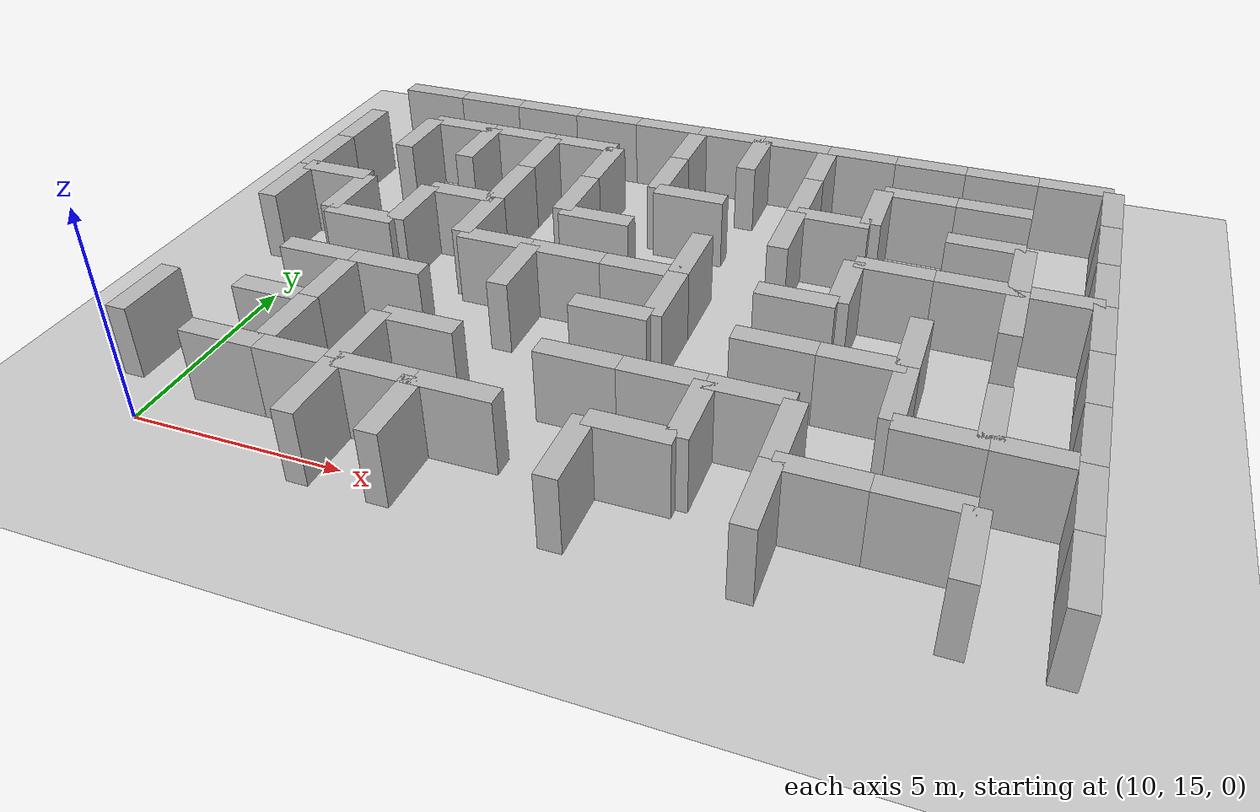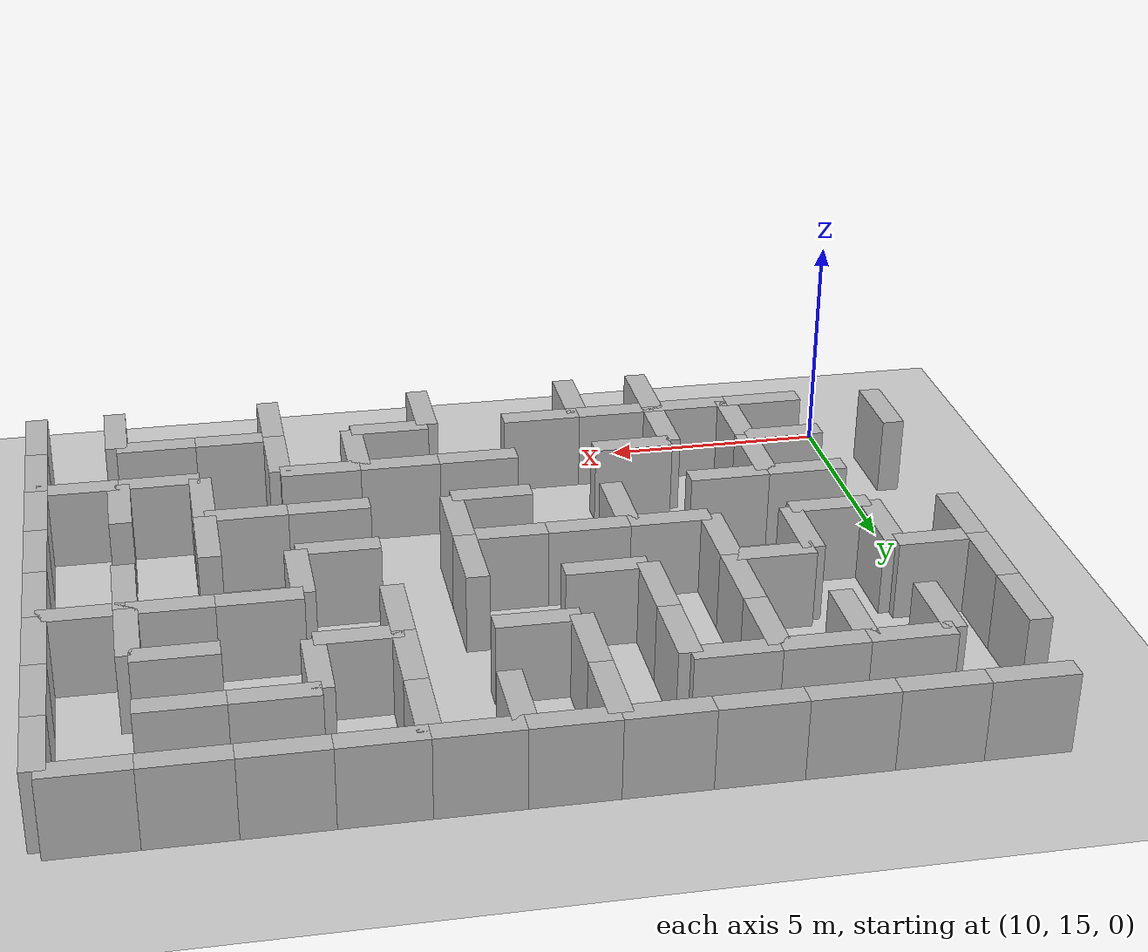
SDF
<sdf version="1.6">
 <world name="default">
  <model name="ground_plane">
   <static>1</static>
   <link name="link">
    <collision name="collision">
     <geometry><plane><normal>0 0 1</normal><size>100 100</size></plane></geometry>
     <surface><friction><ode><mu>100</mu><mu2>50</mu2></ode></friction></surface>
    </collision>
    <visual name="visual">
     <cast_shadows>0</cast_shadows>
     <geometry><plane><normal>0 0 1</normal><size>100 100</size></plane></geometry>
     <material>
      <script><uri>file://media/materials/scripts/gazebo.material</uri><name>Gazebo/Grey</name></script>
     </material>
    </visual>
   </link>
  </model>
  <model name="labyrinth_wall280">
   <pose>14.400000 15.300000 0.9 0 0 1.570796</pose>
   <link name="link">
    <inertial><mass>3.0</mass></inertial>
    <collision name="collision"><geometry><box><size>1.8 0.5 1.8</size></box></geometry></collision>
    <visual name="visual"><geometry><box><size>1.8 0.5 1.8</size></box></geometry></visual>
   </link>
   <static>true</static>
  </model>
  <model name="labyrinth_wall282">
   <pose>16.200001 15.300000 0.9 0 0 1.570796</pose>
   <link name="link">
    <inertial><mass>3.0</mass></inertial>
    <collision name="collision"><geometry><box><size>1.8 0.5 1.8</size></box></geometry></collision>
    <visual name="visual"><geometry><box><size>1.8 0.5 1.8</size></box></geometry></visual>
   </link>
   <static>true</static>
  </model>
  <model name="labyrinth_wall286">
   <pose>19.799999 15.300000 0.9 0 0 1.570796</pose>
   <link name="link">
    <inertial><mass>3.0</mass></inertial>
    <collision name="collision"><geometry><box><size>1.8 0.5 1.8</size></box></geometry></collision>
    <visual name="visual"><geometry><box><size>1.8 0.5 1.8</size></box></geometry></visual>
   </link>
   <static>true</static>
  </model>
  <model name="labyrinth_wall290">
   <pose>23.400000 15.300000 0.9 0 0 1.570796</pose>
   <link name="link">
    <inertial><mass>3.0</mass></inertial>
    <collision name="collision"><geometry><box><size>1.8 0.5 1.8</size></box></geometry></collision>
    <visual name="visual"><geometry><box><size>1.8 0.5 1.8</size></box></geometry></visual>
   </link>
   <static>true</static>
  </model>
  <model name="labyrinth_wall294">
   <pose>27.000000 15.300000 0.9 0 0 1.570796</pose>
   <link name="link">
    <inertial><mass>3.0</mass></inertial>
    <collision name="collision"><geometry><box><size>1.8 0.5 1.8</size></box></geometry></collision>
    <visual name="visual"><geometry><box><size>1.8 0.5 1.8</size></box></geometry></visual>
   </link>
   <static>true</static>
  </model>
  <model name="labyrinth_wall296">
   <pose>28.799999 15.300000 0.9 0 0 1.570796</pose>
   <link name="link">
    <inertial><mass>3.0</mass></inertial>
    <collision name="collision"><geometry><box><size>1.8 0.5 1.8</size></box></geometry></collision>
    <visual name="visual"><geometry><box><size>1.8 0.5 1.8</size></box></geometry></visual>
   </link>
   <static>true</static>
  </model>
  <model name="labyrinth_wall307">
   <pose>9.000000 17.100000 0.9 0 0 1.570796</pose>
   <link name="link">
    <inertial><mass>3.0</mass></inertial>
    <collision name="collision"><geometry><box><size>1.8 0.5 1.8</size></box></geometry></collision>
    <visual name="visual"><geometry><box><size>1.8 0.5 1.8</size></box></geometry></visual>
   </link>
   <static>true</static>
  </model>
  <model name="labyrinth_wall310">
   <pose>11.700000 16.200001 0.9 0 0 0.000000</pose>
   <link name="link">
    <inertial><mass>3.0</mass></inertial>
    <collision name="collision"><geometry><box><size>1.8 0.5 1.8</size></box></geometry></collision>
    <visual name="visual"><geometry><box><size>1.8 0.5 1.8</size></box></geometry></visual>
   </link>
   <static>true</static>
  </model>
  <model name="labyrinth_wall311">
   <pose>12.600000 17.100000 0.9 0 0 1.570796</pose>
   <link name="link">
    <inertial><mass>3.0</mass></inertial>
    <collision name="collision"><geometry><box><size>1.8 0.5 1.8</size></box></geometry></collision>
    <visual name="visual"><geometry><box><size>1.8 0.5 1.8</size></box></geometry></visual>
   </link>
   <static>true</static>
  </model>
  <model name="labyrinth_wall312">
   <pose>13.500000 16.200001 0.9 0 0 0.000000</pose>
   <link name="link">
    <inertial><mass>3.0</mass></inertial>
    <collision name="collision"><geometry><box><size>1.8 0.5 1.8</size></box></geometry></collision>
    <visual name="visual"><geometry><box><size>1.8 0.5 1.8</size></box></geometry></visual>
   </link>
   <static>true</static>
  </model>
  <model name="labyrinth_wall313">
   <pose>14.400000 17.100000 0.9 0 0 1.570796</pose>
   <link name="link">
    <inertial><mass>3.0</mass></inertial>
    <collision name="collision"><geometry><box><size>1.8 0.5 1.8</size></box></geometry></collision>
    <visual name="visual"><geometry><box><size>1.8 0.5 1.8</size></box></geometry></visual>
   </link>
   <static>true</static>
  </model>
  <model name="labyrinth_wall314">
   <pose>15.300000 16.200001 0.9 0 0 0.000000</pose>
   <link name="link">
    <inertial><mass>3.0</mass></inertial>
    <collision name="collision"><geometry><box><size>1.8 0.5 1.8</size></box></geometry></collision>
    <visual name="visual"><geometry><box><size>1.8 0.5 1.8</size></box></geometry></visual>
   </link>
   <static>true</static>
  </model>
  <model name="labyrinth_wall316">
   <pose>17.100000 16.200001 0.9 0 0 0.000000</pose>
   <link name="link">
    <inertial><mass>3.0</mass></inertial>
    <collision name="collision"><geometry><box><size>1.8 0.5 1.8</size></box></geometry></collision>
    <visual name="visual"><geometry><box><size>1.8 0.5 1.8</size></box></geometry></visual>
   </link>
   <static>true</static>
  </model>
  <model name="labyrinth_wall320">
   <pose>20.700001 16.200001 0.9 0 0 0.000000</pose>
   <link name="link">
    <inertial><mass>3.0</mass></inertial>
    <collision name="collision"><geometry><box><size>1.8 0.5 1.8</size></box></geometry></collision>
    <visual name="visual"><geometry><box><size>1.8 0.5 1.8</size></box></geometry></visual>
   </link>
   <static>true</static>
  </model>
  <model name="labyrinth_wall321">
   <pose>21.600000 17.100000 0.9 0 0 1.570796</pose>
   <link name="link">
    <inertial><mass>3.0</mass></inertial>
    <collision name="collision"><geometry><box><size>1.8 0.5 1.8</size></box></geometry></collision>
    <visual name="visual"><geometry><box><size>1.8 0.5 1.8</size></box></geometry></visual>
   </link>
   <static>true</static>
  </model>
  <model name="labyrinth_wall323">
   <pose>23.400000 17.100000 0.9 0 0 1.570796</pose>
   <link name="link">
    <inertial><mass>3.0</mass></inertial>
    <collision name="collision"><geometry><box><size>1.8 0.5 1.8</size></box></geometry></collision>
    <visual name="visual"><geometry><box><size>1.8 0.5 1.8</size></box></geometry></visual>
   </link>
   <static>true</static>
  </model>
  <model name="labyrinth_wall324">
   <pose>24.299999 16.200001 0.9 0 0 0.000000</pose>
   <link name="link">
    <inertial><mass>3.0</mass></inertial>
    <collision name="collision"><geometry><box><size>1.8 0.5 1.8</size></box></geometry></collision>
    <visual name="visual"><geometry><box><size>1.8 0.5 1.8</size></box></geometry></visual>
   </link>
   <static>true</static>
  </model>
  <model name="labyrinth_wall326">
   <pose>26.100000 16.200001 0.9 0 0 0.000000</pose>
   <link name="link">
    <inertial><mass>3.0</mass></inertial>
    <collision name="collision"><geometry><box><size>1.8 0.5 1.8</size></box></geometry></collision>
    <visual name="visual"><geometry><box><size>1.8 0.5 1.8</size></box></geometry></visual>
   </link>
   <static>true</static>
  </model>
  <model name="labyrinth_wall329">
   <pose>28.799999 17.100000 0.9 0 0 1.570796</pose>
   <link name="link">
    <inertial><mass>3.0</mass></inertial>
    <collision name="collision"><geometry><box><size>1.8 0.5 1.8</size></box></geometry></collision>
    <visual name="visual"><geometry><box><size>1.8 0.5 1.8</size></box></geometry></visual>
   </link>
   <static>true</static>
  </model>
  <model name="labyrinth_wall343">
   <pose>11.700000 18.000000 0.9 0 0 0.000000</pose>
   <link name="link">
    <inertial><mass>3.0</mass></inertial>
    <collision name="collision"><geometry><box><size>1.8 0.5 1.8</size></box></geometry></collision>
    <visual name="visual"><geometry><box><size>1.8 0.5 1.8</size></box></geometry></visual>
   </link>
   <static>true</static>
  </model>
  <model name="labyrinth_wall344">
   <pose>12.600000 18.900000 0.9 0 0 1.570796</pose>
   <link name="link">
    <inertial><mass>3.0</mass></inertial>
    <collision name="collision"><geometry><box><size>1.8 0.5 1.8</size></box></geometry></collision>
    <visual name="visual"><geometry><box><size>1.8 0.5 1.8</size></box></geometry></visual>
   </link>
   <static>true</static>
  </model>
  <model name="labyrinth_wall347">
   <pose>15.300000 18.000000 0.9 0 0 0.000000</pose>
   <link name="link">
    <inertial><mass>3.0</mass></inertial>
    <collision name="collision"><geometry><box><size>1.8 0.5 1.8</size></box></geometry></collision>
    <visual name="visual"><geometry><box><size>1.8 0.5 1.8</size></box></geometry></visual>
   </link>
   <static>true</static>
  </model>
  <model name="labyrinth_wall351">
   <pose>18.900000 18.000000 0.9 0 0 0.000000</pose>
   <link name="link">
    <inertial><mass>3.0</mass></inertial>
    <collision name="collision"><geometry><box><size>1.8 0.5 1.8</size></box></geometry></collision>
    <visual name="visual"><geometry><box><size>1.8 0.5 1.8</size></box></geometry></visual>
   </link>
   <static>true</static>
  </model>
  <model name="labyrinth_wall353">
   <pose>20.700001 18.000000 0.9 0 0 0.000000</pose>
   <link name="link">
    <inertial><mass>3.0</mass></inertial>
    <collision name="collision"><geometry><box><size>1.8 0.5 1.8</size></box></geometry></collision>
    <visual name="visual"><geometry><box><size>1.8 0.5 1.8</size></box></geometry></visual>
   </link>
   <static>true</static>
  </model>
  <model name="labyrinth_wall355">
   <pose>22.500000 18.000000 0.9 0 0 0.000000</pose>
   <link name="link">
    <inertial><mass>3.0</mass></inertial>
    <collision name="collision"><geometry><box><size>1.8 0.5 1.8</size></box></geometry></collision>
    <visual name="visual"><geometry><box><size>1.8 0.5 1.8</size></box></geometry></visual>
   </link>
   <static>true</static>
  </model>
  <model name="labyrinth_wall358">
   <pose>25.200001 18.900000 0.9 0 0 1.570796</pose>
   <link name="link">
    <inertial><mass>3.0</mass></inertial>
    <collision name="collision"><geometry><box><size>1.8 0.5 1.8</size></box></geometry></collision>
    <visual name="visual"><geometry><box><size>1.8 0.5 1.8</size></box></geometry></visual>
   </link>
   <static>true</static>
  </model>
  <model name="labyrinth_wall359">
   <pose>26.100000 18.000000 0.9 0 0 0.000000</pose>
   <link name="link">
    <inertial><mass>3.0</mass></inertial>
    <collision name="collision"><geometry><box><size>1.8 0.5 1.8</size></box></geometry></collision>
    <visual name="visual"><geometry><box><size>1.8 0.5 1.8</size></box></geometry></visual>
   </link>
   <static>true</static>
  </model>
  <model name="labyrinth_wall360">
   <pose>27.000000 18.900000 0.9 0 0 1.570796</pose>
   <link name="link">
    <inertial><mass>3.0</mass></inertial>
    <collision name="collision"><geometry><box><size>1.8 0.5 1.8</size></box></geometry></collision>
    <visual name="visual"><geometry><box><size>1.8 0.5 1.8</size></box></geometry></visual>
   </link>
   <static>true</static>
  </model>
  <model name="labyrinth_wall361">
   <pose>27.900000 18.000000 0.9 0 0 0.000000</pose>
   <link name="link">
    <inertial><mass>3.0</mass></inertial>
    <collision name="collision"><geometry><box><size>1.8 0.5 1.8</size></box></geometry></collision>
    <visual name="visual"><geometry><box><size>1.8 0.5 1.8</size></box></geometry></visual>
   </link>
   <static>true</static>
  </model>
  <model name="labyrinth_wall362">
   <pose>28.799999 18.900000 0.9 0 0 1.570796</pose>
   <link name="link">
    <inertial><mass>3.0</mass></inertial>
    <collision name="collision"><geometry><box><size>1.8 0.5 1.8</size></box></geometry></collision>
    <visual name="visual"><geometry><box><size>1.8 0.5 1.8</size></box></geometry></visual>
   </link>
   <static>true</static>
  </model>
  <model name="labyrinth_wall376">
   <pose>11.700000 19.799999 0.9 0 0 0.000000</pose>
   <link name="link">
    <inertial><mass>3.0</mass></inertial>
    <collision name="collision"><geometry><box><size>1.8 0.5 1.8</size></box></geometry></collision>
    <visual name="visual"><geometry><box><size>1.8 0.5 1.8</size></box></geometry></visual>
   </link>
   <static>true</static>
  </model>
  <model name="labyrinth_wall378">
   <pose>13.500000 19.799999 0.9 0 0 0.000000</pose>
   <link name="link">
    <inertial><mass>3.0</mass></inertial>
    <collision name="collision"><geometry><box><size>1.8 0.5 1.8</size></box></geometry></collision>
    <visual name="visual"><geometry><box><size>1.8 0.5 1.8</size></box></geometry></visual>
   </link>
   <static>true</static>
  </model>
  <model name="labyrinth_wall381">
   <pose>16.200001 20.700001 0.9 0 0 1.570796</pose>
   <link name="link">
    <inertial><mass>3.0</mass></inertial>
    <collision name="collision"><geometry><box><size>1.8 0.5 1.8</size></box></geometry></collision>
    <visual name="visual"><geometry><box><size>1.8 0.5 1.8</size></box></geometry></visual>
   </link>
   <static>true</static>
  </model>
  <model name="labyrinth_wall384">
   <pose>18.900000 19.799999 0.9 0 0 0.000000</pose>
   <link name="link">
    <inertial><mass>3.0</mass></inertial>
    <collision name="collision"><geometry><box><size>1.8 0.5 1.8</size></box></geometry></collision>
    <visual name="visual"><geometry><box><size>1.8 0.5 1.8</size></box></geometry></visual>
   </link>
   <static>true</static>
  </model>
  <model name="labyrinth_wall385">
   <pose>19.799999 20.700001 0.9 0 0 1.570796</pose>
   <link name="link">
    <inertial><mass>3.0</mass></inertial>
    <collision name="collision"><geometry><box><size>1.8 0.5 1.8</size></box></geometry></collision>
    <visual name="visual"><geometry><box><size>1.8 0.5 1.8</size></box></geometry></visual>
   </link>
   <static>true</static>
  </model>
  <model name="labyrinth_wall388">
   <pose>22.500000 19.799999 0.9 0 0 0.000000</pose>
   <link name="link">
    <inertial><mass>3.0</mass></inertial>
    <collision name="collision"><geometry><box><size>1.8 0.5 1.8</size></box></geometry></collision>
    <visual name="visual"><geometry><box><size>1.8 0.5 1.8</size></box></geometry></visual>
   </link>
   <static>true</static>
  </model>
  <model name="labyrinth_wall390">
   <pose>24.299999 19.799999 0.9 0 0 0.000000</pose>
   <link name="link">
    <inertial><mass>3.0</mass></inertial>
    <collision name="collision"><geometry><box><size>1.8 0.5 1.8</size></box></geometry></collision>
    <visual name="visual"><geometry><box><size>1.8 0.5 1.8</size></box></geometry></visual>
   </link>
   <static>true</static>
  </model>
  <model name="labyrinth_wall391">
   <pose>25.200001 20.700001 0.9 0 0 1.570796</pose>
   <link name="link">
    <inertial><mass>3.0</mass></inertial>
    <collision name="collision"><geometry><box><size>1.8 0.5 1.8</size></box></geometry></collision>
    <visual name="visual"><geometry><box><size>1.8 0.5 1.8</size></box></geometry></visual>
   </link>
   <static>true</static>
  </model>
  <model name="labyrinth_wall395">
   <pose>28.799999 20.700001 0.9 0 0 1.570796</pose>
   <link name="link">
    <inertial><mass>3.0</mass></inertial>
    <collision name="collision"><geometry><box><size>1.8 0.5 1.8</size></box></geometry></collision>
    <visual name="visual"><geometry><box><size>1.8 0.5 1.8</size></box></geometry></visual>
   </link>
   <static>true</static>
  </model>
  <model name="labyrinth_wall406">
   <pose>9.000000 22.500000 0.9 0 0 1.570796</pose>
   <link name="link">
    <inertial><mass>3.0</mass></inertial>
    <collision name="collision"><geometry><box><size>1.8 0.5 1.8</size></box></geometry></collision>
    <visual name="visual"><geometry><box><size>1.8 0.5 1.8</size></box></geometry></visual>
   </link>
   <static>true</static>
  </model>
  <model name="labyrinth_wall408">
   <pose>10.800000 22.500000 0.9 0 0 1.570796</pose>
   <link name="link">
    <inertial><mass>3.0</mass></inertial>
    <collision name="collision"><geometry><box><size>1.8 0.5 1.8</size></box></geometry></collision>
    <visual name="visual"><geometry><box><size>1.8 0.5 1.8</size></box></geometry></visual>
   </link>
   <static>true</static>
  </model>
  <model name="labyrinth_wall409">
   <pose>11.700000 21.600000 0.9 0 0 0.000000</pose>
   <link name="link">
    <inertial><mass>3.0</mass></inertial>
    <collision name="collision"><geometry><box><size>1.8 0.5 1.8</size></box></geometry></collision>
    <visual name="visual"><geometry><box><size>1.8 0.5 1.8</size></box></geometry></visual>
   </link>
   <static>true</static>
  </model>
  <model name="labyrinth_wall410">
   <pose>12.600000 22.500000 0.9 0 0 1.570796</pose>
   <link name="link">
    <inertial><mass>3.0</mass></inertial>
    <collision name="collision"><geometry><box><size>1.8 0.5 1.8</size></box></geometry></collision>
    <visual name="visual"><geometry><box><size>1.8 0.5 1.8</size></box></geometry></visual>
   </link>
   <static>true</static>
  </model>
  <model name="labyrinth_wall412">
   <pose>14.400000 22.500000 0.9 0 0 1.570796</pose>
   <link name="link">
    <inertial><mass>3.0</mass></inertial>
    <collision name="collision"><geometry><box><size>1.8 0.5 1.8</size></box></geometry></collision>
    <visual name="visual"><geometry><box><size>1.8 0.5 1.8</size></box></geometry></visual>
   </link>
   <static>true</static>
  </model>
  <model name="labyrinth_wall413">
   <pose>15.300000 21.600000 0.9 0 0 0.000000</pose>
   <link name="link">
    <inertial><mass>3.0</mass></inertial>
    <collision name="collision"><geometry><box><size>1.8 0.5 1.8</size></box></geometry></collision>
    <visual name="visual"><geometry><box><size>1.8 0.5 1.8</size></box></geometry></visual>
   </link>
   <static>true</static>
  </model>
  <model name="labyrinth_wall415">
   <pose>17.100000 21.600000 0.9 0 0 0.000000</pose>
   <link name="link">
    <inertial><mass>3.0</mass></inertial>
    <collision name="collision"><geometry><box><size>1.8 0.5 1.8</size></box></geometry></collision>
    <visual name="visual"><geometry><box><size>1.8 0.5 1.8</size></box></geometry></visual>
   </link>
   <static>true</static>
  </model>
  <model name="labyrinth_wall417">
   <pose>18.900000 21.600000 0.9 0 0 0.000000</pose>
   <link name="link">
    <inertial><mass>3.0</mass></inertial>
    <collision name="collision"><geometry><box><size>1.8 0.5 1.8</size></box></geometry></collision>
    <visual name="visual"><geometry><box><size>1.8 0.5 1.8</size></box></geometry></visual>
   </link>
   <static>true</static>
  </model>
  <model name="labyrinth_wall418">
   <pose>19.799999 22.500000 0.9 0 0 1.570796</pose>
   <link name="link">
    <inertial><mass>3.0</mass></inertial>
    <collision name="collision"><geometry><box><size>1.8 0.5 1.8</size></box></geometry></collision>
    <visual name="visual"><geometry><box><size>1.8 0.5 1.8</size></box></geometry></visual>
   </link>
   <static>true</static>
  </model>
  <model name="labyrinth_wall421">
   <pose>22.500000 21.600000 0.9 0 0 0.000000</pose>
   <link name="link">
    <inertial><mass>3.0</mass></inertial>
    <collision name="collision"><geometry><box><size>1.8 0.5 1.8</size></box></geometry></collision>
    <visual name="visual"><geometry><box><size>1.8 0.5 1.8</size></box></geometry></visual>
   </link>
   <static>true</static>
  </model>
  <model name="labyrinth_wall422">
   <pose>23.400000 22.500000 0.9 0 0 1.570796</pose>
   <link name="link">
    <inertial><mass>3.0</mass></inertial>
    <collision name="collision"><geometry><box><size>1.8 0.5 1.8</size></box></geometry></collision>
    <visual name="visual"><geometry><box><size>1.8 0.5 1.8</size></box></geometry></visual>
   </link>
   <static>true</static>
  </model>
  <model name="labyrinth_wall426">
   <pose>27.000000 22.500000 0.9 0 0 1.570796</pose>
   <link name="link">
    <inertial><mass>3.0</mass></inertial>
    <collision name="collision"><geometry><box><size>1.8 0.5 1.8</size></box></geometry></collision>
    <visual name="visual"><geometry><box><size>1.8 0.5 1.8</size></box></geometry></visual>
   </link>
   <static>true</static>
  </model>
  <model name="labyrinth_wall428">
   <pose>28.799999 22.500000 0.9 0 0 1.570796</pose>
   <link name="link">
    <inertial><mass>3.0</mass></inertial>
    <collision name="collision"><geometry><box><size>1.8 0.5 1.8</size></box></geometry></collision>
    <visual name="visual"><geometry><box><size>1.8 0.5 1.8</size></box></geometry></visual>
   </link>
   <static>true</static>
  </model>
  <model name="labyrinth_wall439">
   <pose>9.000000 24.299999 0.9 0 0 1.570796</pose>
   <link name="link">
    <inertial><mass>3.0</mass></inertial>
    <collision name="collision"><geometry><box><size>1.8 0.5 1.8</size></box></geometry></collision>
    <visual name="visual"><geometry><box><size>1.8 0.5 1.8</size></box></geometry></visual>
   </link>
   <static>true</static>
  </model>
  <model name="labyrinth_wall440">
   <pose>9.900000 23.400000 0.9 0 0 0.000000</pose>
   <link name="link">
    <inertial><mass>3.0</mass></inertial>
    <collision name="collision"><geometry><box><size>1.8 0.5 1.8</size></box></geometry></collision>
    <visual name="visual"><geometry><box><size>1.8 0.5 1.8</size></box></geometry></visual>
   </link>
   <static>true</static>
  </model>
  <model name="labyrinth_wall444">
   <pose>13.500000 23.400000 0.9 0 0 0.000000</pose>
   <link name="link">
    <inertial><mass>3.0</mass></inertial>
    <collision name="collision"><geometry><box><size>1.8 0.5 1.8</size></box></geometry></collision>
    <visual name="visual"><geometry><box><size>1.8 0.5 1.8</size></box></geometry></visual>
   </link>
   <static>true</static>
  </model>
  <model name="labyrinth_wall445">
   <pose>14.400000 24.299999 0.9 0 0 1.570796</pose>
   <link name="link">
    <inertial><mass>3.0</mass></inertial>
    <collision name="collision"><geometry><box><size>1.8 0.5 1.8</size></box></geometry></collision>
    <visual name="visual"><geometry><box><size>1.8 0.5 1.8</size></box></geometry></visual>
   </link>
   <static>true</static>
  </model>
  <model name="labyrinth_wall447">
   <pose>16.200001 24.299999 0.9 0 0 1.570796</pose>
   <link name="link">
    <inertial><mass>3.0</mass></inertial>
    <collision name="collision"><geometry><box><size>1.8 0.5 1.8</size></box></geometry></collision>
    <visual name="visual"><geometry><box><size>1.8 0.5 1.8</size></box></geometry></visual>
   </link>
   <static>true</static>
  </model>
  <model name="labyrinth_wall448">
   <pose>17.100000 23.400000 0.9 0 0 0.000000</pose>
   <link name="link">
    <inertial><mass>3.0</mass></inertial>
    <collision name="collision"><geometry><box><size>1.8 0.5 1.8</size></box></geometry></collision>
    <visual name="visual"><geometry><box><size>1.8 0.5 1.8</size></box></geometry></visual>
   </link>
   <static>true</static>
  </model>
  <model name="labyrinth_wall453">
   <pose>21.600000 24.299999 0.9 0 0 1.570796</pose>
   <link name="link">
    <inertial><mass>3.0</mass></inertial>
    <collision name="collision"><geometry><box><size>1.8 0.5 1.8</size></box></geometry></collision>
    <visual name="visual"><geometry><box><size>1.8 0.5 1.8</size></box></geometry></visual>
   </link>
   <static>true</static>
  </model>
  <model name="labyrinth_wall456">
   <pose>24.299999 23.400000 0.9 0 0 0.000000</pose>
   <link name="link">
    <inertial><mass>3.0</mass></inertial>
    <collision name="collision"><geometry><box><size>1.8 0.5 1.8</size></box></geometry></collision>
    <visual name="visual"><geometry><box><size>1.8 0.5 1.8</size></box></geometry></visual>
   </link>
   <static>true</static>
  </model>
  <model name="labyrinth_wall458">
   <pose>26.100000 23.400000 0.9 0 0 0.000000</pose>
   <link name="link">
    <inertial><mass>3.0</mass></inertial>
    <collision name="collision"><geometry><box><size>1.8 0.5 1.8</size></box></geometry></collision>
    <visual name="visual"><geometry><box><size>1.8 0.5 1.8</size></box></geometry></visual>
   </link>
   <static>true</static>
  </model>
  <model name="labyrinth_wall459">
   <pose>27.000000 24.299999 0.9 0 0 1.570796</pose>
   <link name="link">
    <inertial><mass>3.0</mass></inertial>
    <collision name="collision"><geometry><box><size>1.8 0.5 1.8</size></box></geometry></collision>
    <visual name="visual"><geometry><box><size>1.8 0.5 1.8</size></box></geometry></visual>
   </link>
   <static>true</static>
  </model>
  <model name="labyrinth_wall460">
   <pose>27.900000 23.400000 0.9 0 0 0.000000</pose>
   <link name="link">
    <inertial><mass>3.0</mass></inertial>
    <collision name="collision"><geometry><box><size>1.8 0.5 1.8</size></box></geometry></collision>
    <visual name="visual"><geometry><box><size>1.8 0.5 1.8</size></box></geometry></visual>
   </link>
   <static>true</static>
  </model>
  <model name="labyrinth_wall461">
   <pose>28.799999 24.299999 0.9 0 0 1.570796</pose>
   <link name="link">
    <inertial><mass>3.0</mass></inertial>
    <collision name="collision"><geometry><box><size>1.8 0.5 1.8</size></box></geometry></collision>
    <visual name="visual"><geometry><box><size>1.8 0.5 1.8</size></box></geometry></visual>
   </link>
   <static>true</static>
  </model>
  <model name="labyrinth_wall472">
   <pose>9.000000 26.100000 0.9 0 0 1.570796</pose>
   <link name="link">
    <inertial><mass>3.0</mass></inertial>
    <collision name="collision"><geometry><box><size>1.8 0.5 1.8</size></box></geometry></collision>
    <visual name="visual"><geometry><box><size>1.8 0.5 1.8</size></box></geometry></visual>
   </link>
   <static>true</static>
  </model>
  <model name="labyrinth_wall474">
   <pose>10.800000 26.100000 0.9 0 0 1.570796</pose>
   <link name="link">
    <inertial><mass>3.0</mass></inertial>
    <collision name="collision"><geometry><box><size>1.8 0.5 1.8</size></box></geometry></collision>
    <visual name="visual"><geometry><box><size>1.8 0.5 1.8</size></box></geometry></visual>
   </link>
   <static>true</static>
  </model>
  <model name="labyrinth_wall476">
   <pose>12.600000 26.100000 0.9 0 0 1.570796</pose>
   <link name="link">
    <inertial><mass>3.0</mass></inertial>
    <collision name="collision"><geometry><box><size>1.8 0.5 1.8</size></box></geometry></collision>
    <visual name="visual"><geometry><box><size>1.8 0.5 1.8</size></box></geometry></visual>
   </link>
   <static>true</static>
  </model>
  <model name="labyrinth_wall478">
   <pose>14.400000 26.100000 0.9 0 0 1.570796</pose>
   <link name="link">
    <inertial><mass>3.0</mass></inertial>
    <collision name="collision"><geometry><box><size>1.8 0.5 1.8</size></box></geometry></collision>
    <visual name="visual"><geometry><box><size>1.8 0.5 1.8</size></box></geometry></visual>
   </link>
   <static>true</static>
  </model>
  <model name="labyrinth_wall480">
   <pose>16.200001 26.100000 0.9 0 0 1.570796</pose>
   <link name="link">
    <inertial><mass>3.0</mass></inertial>
    <collision name="collision"><geometry><box><size>1.8 0.5 1.8</size></box></geometry></collision>
    <visual name="visual"><geometry><box><size>1.8 0.5 1.8</size></box></geometry></visual>
   </link>
   <static>true</static>
  </model>
  <model name="labyrinth_wall482">
   <pose>18.000000 26.100000 0.9 0 0 1.570796</pose>
   <link name="link">
    <inertial><mass>3.0</mass></inertial>
    <collision name="collision"><geometry><box><size>1.8 0.5 1.8</size></box></geometry></collision>
    <visual name="visual"><geometry><box><size>1.8 0.5 1.8</size></box></geometry></visual>
   </link>
   <static>true</static>
  </model>
  <model name="labyrinth_wall483">
   <pose>18.900000 25.200001 0.9 0 0 0.000000</pose>
   <link name="link">
    <inertial><mass>3.0</mass></inertial>
    <collision name="collision"><geometry><box><size>1.8 0.5 1.8</size></box></geometry></collision>
    <visual name="visual"><geometry><box><size>1.8 0.5 1.8</size></box></geometry></visual>
   </link>
   <static>true</static>
  </model>
  <model name="labyrinth_wall486">
   <pose>21.600000 26.100000 0.9 0 0 1.570796</pose>
   <link name="link">
    <inertial><mass>3.0</mass></inertial>
    <collision name="collision"><geometry><box><size>1.8 0.5 1.8</size></box></geometry></collision>
    <visual name="visual"><geometry><box><size>1.8 0.5 1.8</size></box></geometry></visual>
   </link>
   <static>true</static>
  </model>
  <model name="labyrinth_wall487">
   <pose>22.500000 25.200001 0.9 0 0 0.000000</pose>
   <link name="link">
    <inertial><mass>3.0</mass></inertial>
    <collision name="collision"><geometry><box><size>1.8 0.5 1.8</size></box></geometry></collision>
    <visual name="visual"><geometry><box><size>1.8 0.5 1.8</size></box></geometry></visual>
   </link>
   <static>true</static>
  </model>
  <model name="labyrinth_wall488">
   <pose>23.400000 26.100000 0.9 0 0 1.570796</pose>
   <link name="link">
    <inertial><mass>3.0</mass></inertial>
    <collision name="collision"><geometry><box><size>1.8 0.5 1.8</size></box></geometry></collision>
    <visual name="visual"><geometry><box><size>1.8 0.5 1.8</size></box></geometry></visual>
   </link>
   <static>true</static>
  </model>
  <model name="labyrinth_wall491">
   <pose>26.100000 25.200001 0.9 0 0 0.000000</pose>
   <link name="link">
    <inertial><mass>3.0</mass></inertial>
    <collision name="collision"><geometry><box><size>1.8 0.5 1.8</size></box></geometry></collision>
    <visual name="visual"><geometry><box><size>1.8 0.5 1.8</size></box></geometry></visual>
   </link>
   <static>true</static>
  </model>
  <model name="labyrinth_wall494">
   <pose>28.799999 26.100000 0.9 0 0 1.570796</pose>
   <link name="link">
    <inertial><mass>3.0</mass></inertial>
    <collision name="collision"><geometry><box><size>1.8 0.5 1.8</size></box></geometry></collision>
    <visual name="visual"><geometry><box><size>1.8 0.5 1.8</size></box></geometry></visual>
   </link>
   <static>true</static>
  </model>
  <model name="labyrinth_wall513">
   <pose>9.900000 28.799999 0.9 0 0 0.000000</pose>
   <link name="link">
    <inertial><mass>3.0</mass></inertial>
    <collision name="collision"><geometry><box><size>1.8 0.5 1.8</size></box></geometry></collision>
    <visual name="visual"><geometry><box><size>1.8 0.5 1.8</size></box></geometry></visual>
   </link>
   <static>true</static>
  </model>
  <model name="labyrinth_wall514">
   <pose>11.700000 27.000000 0.9 0 0 0.000000</pose>
   <link name="link">
    <inertial><mass>3.0</mass></inertial>
    <collision name="collision"><geometry><box><size>1.8 0.5 1.8</size></box></geometry></collision>
    <visual name="visual"><geometry><box><size>1.8 0.5 1.8</size></box></geometry></visual>
   </link>
   <static>true</static>
  </model>
  <model name="labyrinth_wall516">
   <pose>11.700000 28.799999 0.9 0 0 0.000000</pose>
   <link name="link">
    <inertial><mass>3.0</mass></inertial>
    <collision name="collision"><geometry><box><size>1.8 0.5 1.8</size></box></geometry></collision>
    <visual name="visual"><geometry><box><size>1.8 0.5 1.8</size></box></geometry></visual>
   </link>
   <static>true</static>
  </model>
  <model name="labyrinth_wall517">
   <pose>13.500000 27.000000 0.9 0 0 0.000000</pose>
   <link name="link">
    <inertial><mass>3.0</mass></inertial>
    <collision name="collision"><geometry><box><size>1.8 0.5 1.8</size></box></geometry></collision>
    <visual name="visual"><geometry><box><size>1.8 0.5 1.8</size></box></geometry></visual>
   </link>
   <static>true</static>
  </model>
  <model name="labyrinth_wall519">
   <pose>13.500000 28.799999 0.9 0 0 0.000000</pose>
   <link name="link">
    <inertial><mass>3.0</mass></inertial>
    <collision name="collision"><geometry><box><size>1.8 0.5 1.8</size></box></geometry></collision>
    <visual name="visual"><geometry><box><size>1.8 0.5 1.8</size></box></geometry></visual>
   </link>
   <static>true</static>
  </model>
  <model name="labyrinth_wall520">
   <pose>15.300000 27.000000 0.9 0 0 0.000000</pose>
   <link name="link">
    <inertial><mass>3.0</mass></inertial>
    <collision name="collision"><geometry><box><size>1.8 0.5 1.8</size></box></geometry></collision>
    <visual name="visual"><geometry><box><size>1.8 0.5 1.8</size></box></geometry></visual>
   </link>
   <static>true</static>
  </model>
  <model name="labyrinth_wall522">
   <pose>15.300000 28.799999 0.9 0 0 0.000000</pose>
   <link name="link">
    <inertial><mass>3.0</mass></inertial>
    <collision name="collision"><geometry><box><size>1.8 0.5 1.8</size></box></geometry></collision>
    <visual name="visual"><geometry><box><size>1.8 0.5 1.8</size></box></geometry></visual>
   </link>
   <static>true</static>
  </model>
  <model name="labyrinth_wall524">
   <pose>18.000000 27.900000 0.9 0 0 1.570796</pose>
   <link name="link">
    <inertial><mass>3.0</mass></inertial>
    <collision name="collision"><geometry><box><size>1.8 0.5 1.8</size></box></geometry></collision>
    <visual name="visual"><geometry><box><size>1.8 0.5 1.8</size></box></geometry></visual>
   </link>
   <static>true</static>
  </model>
  <model name="labyrinth_wall525">
   <pose>17.100000 28.799999 0.9 0 0 0.000000</pose>
   <link name="link">
    <inertial><mass>3.0</mass></inertial>
    <collision name="collision"><geometry><box><size>1.8 0.5 1.8</size></box></geometry></collision>
    <visual name="visual"><geometry><box><size>1.8 0.5 1.8</size></box></geometry></visual>
   </link>
   <static>true</static>
  </model>
  <model name="labyrinth_wall527">
   <pose>19.799999 27.900000 0.9 0 0 1.570796</pose>
   <link name="link">
    <inertial><mass>3.0</mass></inertial>
    <collision name="collision"><geometry><box><size>1.8 0.5 1.8</size></box></geometry></collision>
    <visual name="visual"><geometry><box><size>1.8 0.5 1.8</size></box></geometry></visual>
   </link>
   <static>true</static>
  </model>
  <model name="labyrinth_wall528">
   <pose>18.900000 28.799999 0.9 0 0 0.000000</pose>
   <link name="link">
    <inertial><mass>3.0</mass></inertial>
    <collision name="collision"><geometry><box><size>1.8 0.5 1.8</size></box></geometry></collision>
    <visual name="visual"><geometry><box><size>1.8 0.5 1.8</size></box></geometry></visual>
   </link>
   <static>true</static>
  </model>
  <model name="labyrinth_wall530">
   <pose>21.600000 27.900000 0.9 0 0 1.570796</pose>
   <link name="link">
    <inertial><mass>3.0</mass></inertial>
    <collision name="collision"><geometry><box><size>1.8 0.5 1.8</size></box></geometry></collision>
    <visual name="visual"><geometry><box><size>1.8 0.5 1.8</size></box></geometry></visual>
   </link>
   <static>true</static>
  </model>
  <model name="labyrinth_wall531">
   <pose>20.700001 28.799999 0.9 0 0 0.000000</pose>
   <link name="link">
    <inertial><mass>3.0</mass></inertial>
    <collision name="collision"><geometry><box><size>1.8 0.5 1.8</size></box></geometry></collision>
    <visual name="visual"><geometry><box><size>1.8 0.5 1.8</size></box></geometry></visual>
   </link>
   <static>true</static>
  </model>
  <model name="labyrinth_wall534">
   <pose>22.500000 28.799999 0.9 0 0 0.000000</pose>
   <link name="link">
    <inertial><mass>3.0</mass></inertial>
    <collision name="collision"><geometry><box><size>1.8 0.5 1.8</size></box></geometry></collision>
    <visual name="visual"><geometry><box><size>1.8 0.5 1.8</size></box></geometry></visual>
   </link>
   <static>true</static>
  </model>
  <model name="labyrinth_wall535">
   <pose>24.299999 27.000000 0.9 0 0 0.000000</pose>
   <link name="link">
    <inertial><mass>3.0</mass></inertial>
    <collision name="collision"><geometry><box><size>1.8 0.5 1.8</size></box></geometry></collision>
    <visual name="visual"><geometry><box><size>1.8 0.5 1.8</size></box></geometry></visual>
   </link>
   <static>true</static>
  </model>
  <model name="labyrinth_wall537">
   <pose>24.299999 28.799999 0.9 0 0 0.000000</pose>
   <link name="link">
    <inertial><mass>3.0</mass></inertial>
    <collision name="collision"><geometry><box><size>1.8 0.5 1.8</size></box></geometry></collision>
    <visual name="visual"><geometry><box><size>1.8 0.5 1.8</size></box></geometry></visual>
   </link>
   <static>true</static>
  </model>
  <model name="labyrinth_wall538">
   <pose>26.100000 27.000000 0.9 0 0 0.000000</pose>
   <link name="link">
    <inertial><mass>3.0</mass></inertial>
    <collision name="collision"><geometry><box><size>1.8 0.5 1.8</size></box></geometry></collision>
    <visual name="visual"><geometry><box><size>1.8 0.5 1.8</size></box></geometry></visual>
   </link>
   <static>true</static>
  </model>
  <model name="labyrinth_wall540">
   <pose>26.100000 28.799999 0.9 0 0 0.000000</pose>
   <link name="link">
    <inertial><mass>3.0</mass></inertial>
    <collision name="collision"><geometry><box><size>1.8 0.5 1.8</size></box></geometry></collision>
    <visual name="visual"><geometry><box><size>1.8 0.5 1.8</size></box></geometry></visual>
   </link>
   <static>true</static>
  </model>
  <model name="labyrinth_wall542">
   <pose>28.799999 27.900000 0.9 0 0 1.570796</pose>
   <link name="link">
    <inertial><mass>3.0</mass></inertial>
    <collision name="collision"><geometry><box><size>1.8 0.5 1.8</size></box></geometry></collision>
    <visual name="visual"><geometry><box><size>1.8 0.5 1.8</size></box></geometry></visual>
   </link>
   <static>true</static>
  </model>
  <model name="labyrinth_wall543">
   <pose>27.900000 28.799999 0.9 0 0 0.000000</pose>
   <link name="link">
    <inertial><mass>3.0</mass></inertial>
    <collision name="collision"><geometry><box><size>1.8 0.5 1.8</size></box></geometry></collision>
    <visual name="visual"><geometry><box><size>1.8 0.5 1.8</size></box></geometry></visual>
   </link>
   <static>true</static>
  </model>
 </world>
</sdf>
